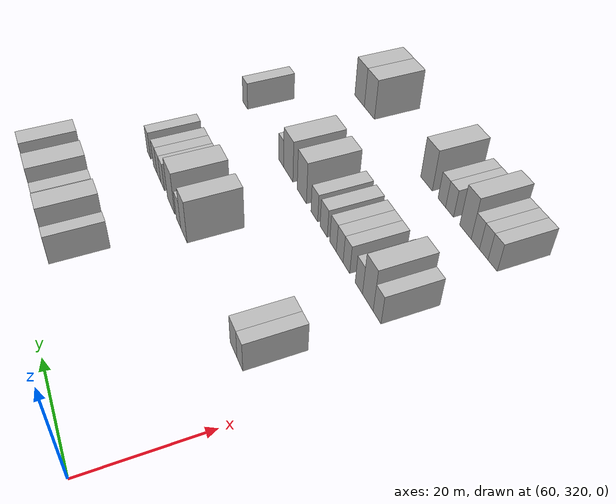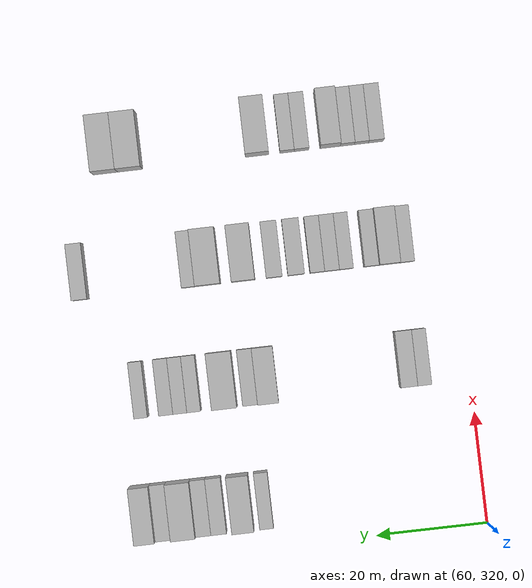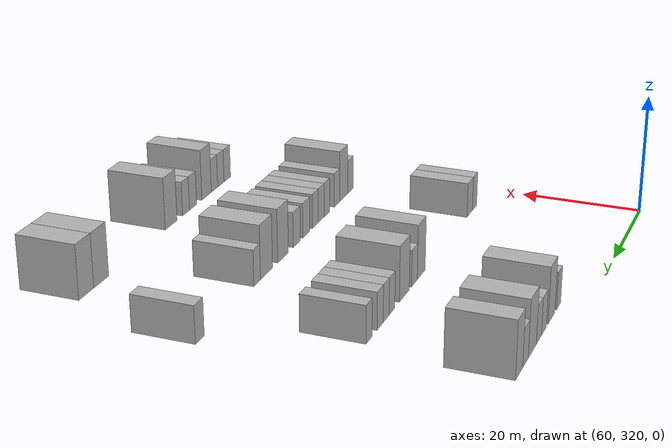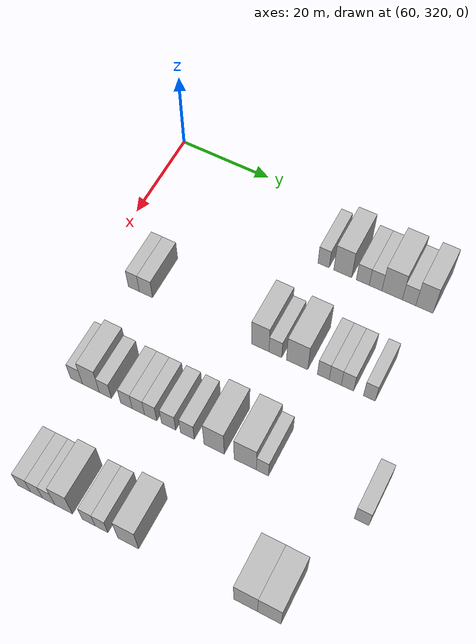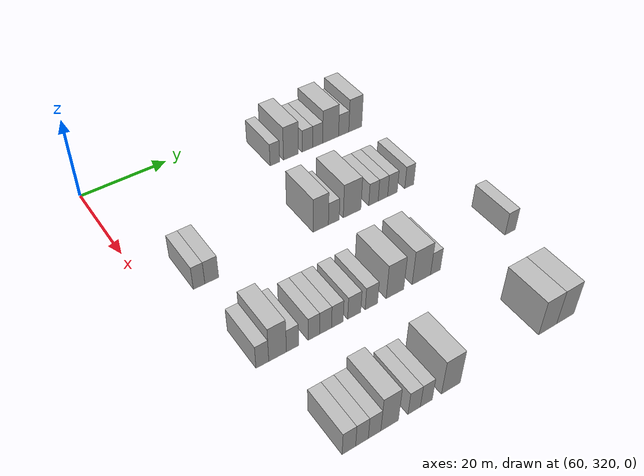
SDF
<sdf version="1.6">
 <world name="default">
  <model name="building_562">
   <static>1</static>
   <pose>69.0000 359.3264 0 0.000000 0.000000 0.000000</pose>
   <link name="link">
    <pose>0 0 3.00 0 0 0</pose>
    <collision name="collision"><geometry><box><size>10.0000 2.4606 6.0000</size></box></geometry></collision>
    <visual name="visual">
     <cast_shadows>0</cast_shadows>
     <geometry><box><size>10.0000 2.4606 6.0000</size></box></geometry>
     <material>
      <script>
       <uri>model://HANNAS_wall/materials/scripts</uri>
       <uri>model://HANNAS_wall/materials/textures</uri>
       <name>vrc/HANNAS_wall</name>
      </script>
     </material>
    </visual>
   </link>
  </model>
  <model name="building_563">
   <static>1</static>
   <pose>69.0000 363.5041 0 0.000000 0.000000 0.000000</pose>
   <link name="link">
    <pose>0 0 4.50 0 0 0</pose>
    <collision name="collision"><geometry><box><size>10.0000 3.8948 9.0000</size></box></geometry></collision>
    <visual name="visual">
     <cast_shadows>0</cast_shadows>
     <geometry><box><size>10.0000 3.8948 9.0000</size></box></geometry>
     <material>
      <script>
       <uri>model://HANNAS_wall/materials/scripts</uri>
       <uri>model://HANNAS_wall/materials/textures</uri>
       <name>vrc/HANNAS_wall</name>
      </script>
     </material>
    </visual>
   </link>
  </model>
  <model name="building_564">
   <static>1</static>
   <pose>69.0000 367.8388 0 0.000000 0.000000 0.000000</pose>
   <link name="link">
    <pose>0 0 3.00 0 0 0</pose>
    <collision name="collision"><geometry><box><size>10.0000 2.7747 6.0000</size></box></geometry></collision>
    <visual name="visual">
     <cast_shadows>0</cast_shadows>
     <geometry><box><size>10.0000 2.7747 6.0000</size></box></geometry>
     <material>
      <script>
       <uri>model://HANNAS_wall/materials/scripts</uri>
       <uri>model://HANNAS_wall/materials/textures</uri>
       <name>vrc/HANNAS_wall</name>
      </script>
     </material>
    </visual>
   </link>
  </model>
  <model name="building_565">
   <static>1</static>
   <pose>69.0000 370.5833 0 0.000000 0.000000 0.000000</pose>
   <link name="link">
    <pose>0 0 3.00 0 0 0</pose>
    <collision name="collision"><geometry><box><size>10.0000 2.7143 6.0000</size></box></geometry></collision>
    <visual name="visual">
     <cast_shadows>0</cast_shadows>
     <geometry><box><size>10.0000 2.7143 6.0000</size></box></geometry>
     <material>
      <script>
       <uri>model://HANNAS_wall/materials/scripts</uri>
       <uri>model://HANNAS_wall/materials/textures</uri>
       <name>vrc/HANNAS_wall</name>
      </script>
     </material>
    </visual>
   </link>
  </model>
  <model name="building_566">
   <static>1</static>
   <pose>69.0000 374.1105 0 0.000000 0.000000 0.000000</pose>
   <link name="link">
    <pose>0 0 4.50 0 0 0</pose>
    <collision name="collision"><geometry><box><size>10.0000 4.3400 9.0000</size></box></geometry></collision>
    <visual name="visual">
     <cast_shadows>0</cast_shadows>
     <geometry><box><size>10.0000 4.3400 9.0000</size></box></geometry>
     <material>
      <script>
       <uri>model://HANNAS_wall/materials/scripts</uri>
       <uri>model://HANNAS_wall/materials/textures</uri>
       <name>vrc/HANNAS_wall</name>
      </script>
     </material>
    </visual>
   </link>
  </model>
  <model name="building_567">
   <static>1</static>
   <pose>69.0000 377.6994 0 0.000000 0.000000 0.000000</pose>
   <link name="link">
    <pose>0 0 3.00 0 0 0</pose>
    <collision name="collision"><geometry><box><size>10.0000 2.8377 6.0000</size></box></geometry></collision>
    <visual name="visual">
     <cast_shadows>0</cast_shadows>
     <geometry><box><size>10.0000 2.8377 6.0000</size></box></geometry>
     <material>
      <script>
       <uri>model://HANNAS_wall/materials/scripts</uri>
       <uri>model://HANNAS_wall/materials/textures</uri>
       <name>vrc/HANNAS_wall</name>
      </script>
     </material>
    </visual>
   </link>
  </model>
  <model name="building_568">
   <static>1</static>
   <pose>69.0000 380.9328 0 0.000000 0.000000 0.000000</pose>
   <link name="link">
    <pose>0 0 4.50 0 0 0</pose>
    <collision name="collision"><geometry><box><size>10.0000 3.6291 9.0000</size></box></geometry></collision>
    <visual name="visual">
     <cast_shadows>0</cast_shadows>
     <geometry><box><size>10.0000 3.6291 9.0000</size></box></geometry>
     <material>
      <script>
       <uri>model://HANNAS_wall/materials/scripts</uri>
       <uri>model://HANNAS_wall/materials/textures</uri>
       <name>vrc/HANNAS_wall</name>
      </script>
     </material>
    </visual>
   </link>
  </model>
  <model name="building_744">
   <static>1</static>
   <pose>91.0000 328.6640 0 0.000000 0.000000 0.000000</pose>
   <link name="link">
    <pose>0 0 3.00 0 0 0</pose>
    <collision name="collision"><geometry><box><size>10.0000 2.4816 6.0000</size></box></geometry></collision>
    <visual name="visual">
     <cast_shadows>0</cast_shadows>
     <geometry><box><size>10.0000 2.4816 6.0000</size></box></geometry>
     <material>
      <script>
       <uri>model://HANNAS_wall/materials/scripts</uri>
       <uri>model://HANNAS_wall/materials/textures</uri>
       <name>vrc/HANNAS_wall</name>
      </script>
     </material>
    </visual>
   </link>
  </model>
  <model name="building_745">
   <static>1</static>
   <pose>91.0000 331.4032 0 0.000000 0.000000 0.000000</pose>
   <link name="link">
    <pose>0 0 3.00 0 0 0</pose>
    <collision name="collision"><geometry><box><size>10.0000 2.9967 6.0000</size></box></geometry></collision>
    <visual name="visual">
     <cast_shadows>0</cast_shadows>
     <geometry><box><size>10.0000 2.9967 6.0000</size></box></geometry>
     <material>
      <script>
       <uri>model://HANNAS_wall/materials/scripts</uri>
       <uri>model://HANNAS_wall/materials/textures</uri>
       <name>vrc/HANNAS_wall</name>
      </script>
     </material>
    </visual>
   </link>
  </model>
  <model name="building_746">
   <static>1</static>
   <pose>91.0000 356.4829 0 0.000000 0.000000 0.000000</pose>
   <link name="link">
    <pose>0 0 4.50 0 0 0</pose>
    <collision name="collision"><geometry><box><size>10.0000 3.7209 9.0000</size></box></geometry></collision>
    <visual name="visual">
     <cast_shadows>0</cast_shadows>
     <geometry><box><size>10.0000 3.7209 9.0000</size></box></geometry>
     <material>
      <script>
       <uri>model://HANNAS_wall/materials/scripts</uri>
       <uri>model://HANNAS_wall/materials/textures</uri>
       <name>vrc/HANNAS_wall</name>
      </script>
     </material>
    </visual>
   </link>
  </model>
  <model name="building_747">
   <static>1</static>
   <pose>91.0000 359.6841 0 0.000000 0.000000 0.000000</pose>
   <link name="link">
    <pose>0 0 3.00 0 0 0</pose>
    <collision name="collision"><geometry><box><size>10.0000 2.6814 6.0000</size></box></geometry></collision>
    <visual name="visual">
     <cast_shadows>0</cast_shadows>
     <geometry><box><size>10.0000 2.6814 6.0000</size></box></geometry>
     <material>
      <script>
       <uri>model://HANNAS_wall/materials/scripts</uri>
       <uri>model://HANNAS_wall/materials/textures</uri>
       <name>vrc/HANNAS_wall</name>
      </script>
     </material>
    </visual>
   </link>
  </model>
  <model name="building_748">
   <static>1</static>
   <pose>91.0000 364.2562 0 0.000000 0.000000 0.000000</pose>
   <link name="link">
    <pose>0 0 4.50 0 0 0</pose>
    <collision name="collision"><geometry><box><size>10.0000 4.4629 9.0000</size></box></geometry></collision>
    <visual name="visual">
     <cast_shadows>0</cast_shadows>
     <geometry><box><size>10.0000 4.4629 9.0000</size></box></geometry>
     <material>
      <script>
       <uri>model://HANNAS_wall/materials/scripts</uri>
       <uri>model://HANNAS_wall/materials/textures</uri>
       <name>vrc/HANNAS_wall</name>
      </script>
     </material>
    </visual>
   </link>
  </model>
  <model name="building_749">
   <static>1</static>
   <pose>91.0000 369.7116 0 0.000000 0.000000 0.000000</pose>
   <link name="link">
    <pose>0 0 3.00 0 0 0</pose>
    <collision name="collision"><geometry><box><size>10.0000 2.4478 6.0000</size></box></geometry></collision>
    <visual name="visual">
     <cast_shadows>0</cast_shadows>
     <geometry><box><size>10.0000 2.4478 6.0000</size></box></geometry>
     <material>
      <script>
       <uri>model://HANNAS_wall/materials/scripts</uri>
       <uri>model://HANNAS_wall/materials/textures</uri>
       <name>vrc/HANNAS_wall</name>
      </script>
     </material>
    </visual>
   </link>
  </model>
  <model name="building_750">
   <static>1</static>
   <pose>91.0000 372.1751 0 0.000000 0.000000 0.000000</pose>
   <link name="link">
    <pose>0 0 3.00 0 0 0</pose>
    <collision name="collision"><geometry><box><size>10.0000 2.4791 6.0000</size></box></geometry></collision>
    <visual name="visual">
     <cast_shadows>0</cast_shadows>
     <geometry><box><size>10.0000 2.4791 6.0000</size></box></geometry>
     <material>
      <script>
       <uri>model://HANNAS_wall/materials/scripts</uri>
       <uri>model://HANNAS_wall/materials/textures</uri>
       <name>vrc/HANNAS_wall</name>
      </script>
     </material>
    </visual>
   </link>
  </model>
  <model name="building_751">
   <static>1</static>
   <pose>91.0000 374.6810 0 0.000000 0.000000 0.000000</pose>
   <link name="link">
    <pose>0 0 3.00 0 0 0</pose>
    <collision name="collision"><geometry><box><size>10.0000 2.5328 6.0000</size></box></geometry></collision>
    <visual name="visual">
     <cast_shadows>0</cast_shadows>
     <geometry><box><size>10.0000 2.5328 6.0000</size></box></geometry>
     <material>
      <script>
       <uri>model://HANNAS_wall/materials/scripts</uri>
       <uri>model://HANNAS_wall/materials/textures</uri>
       <name>vrc/HANNAS_wall</name>
      </script>
     </material>
    </visual>
   </link>
  </model>
  <model name="building_752">
   <static>1</static>
   <pose>91.0000 379.1498 0 0.000000 0.000000 0.000000</pose>
   <link name="link">
    <pose>0 0 3.00 0 0 0</pose>
    <collision name="collision"><geometry><box><size>10.0000 2.4046 6.0000</size></box></geometry></collision>
    <visual name="visual">
     <cast_shadows>0</cast_shadows>
     <geometry><box><size>10.0000 2.4046 6.0000</size></box></geometry>
     <material>
      <script>
       <uri>model://HANNAS_wall/materials/scripts</uri>
       <uri>model://HANNAS_wall/materials/textures</uri>
       <name>vrc/HANNAS_wall</name>
      </script>
     </material>
    </visual>
   </link>
  </model>
  <model name="building_924">
   <static>1</static>
   <pose>113.0000 329.2206 0 0.000000 0.000000 0.000000</pose>
   <link name="link">
    <pose>0 0 3.00 0 0 0</pose>
    <collision name="collision"><geometry><box><size>10.0000 2.6208 6.0000</size></box></geometry></collision>
    <visual name="visual">
     <cast_shadows>0</cast_shadows>
     <geometry><box><size>10.0000 2.6208 6.0000</size></box></geometry>
     <material>
      <script>
       <uri>model://HANNAS_wall/materials/scripts</uri>
       <uri>model://HANNAS_wall/materials/textures</uri>
       <name>vrc/HANNAS_wall</name>
      </script>
     </material>
    </visual>
   </link>
  </model>
  <model name="building_925">
   <static>1</static>
   <pose>113.0000 332.3669 0 0.000000 0.000000 0.000000</pose>
   <link name="link">
    <pose>0 0 4.50 0 0 0</pose>
    <collision name="collision"><geometry><box><size>10.0000 3.6717 9.0000</size></box></geometry></collision>
    <visual name="visual">
     <cast_shadows>0</cast_shadows>
     <geometry><box><size>10.0000 3.6717 9.0000</size></box></geometry>
     <material>
      <script>
       <uri>model://HANNAS_wall/materials/scripts</uri>
       <uri>model://HANNAS_wall/materials/textures</uri>
       <name>vrc/HANNAS_wall</name>
      </script>
     </material>
    </visual>
   </link>
  </model>
  <model name="building_926">
   <static>1</static>
   <pose>113.0000 335.4960 0 0.000000 0.000000 0.000000</pose>
   <link name="link">
    <pose>0 0 3.00 0 0 0</pose>
    <collision name="collision"><geometry><box><size>10.0000 2.5864 6.0000</size></box></geometry></collision>
    <visual name="visual">
     <cast_shadows>0</cast_shadows>
     <geometry><box><size>10.0000 2.5864 6.0000</size></box></geometry>
     <material>
      <script>
       <uri>model://HANNAS_wall/materials/scripts</uri>
       <uri>model://HANNAS_wall/materials/textures</uri>
       <name>vrc/HANNAS_wall</name>
      </script>
     </material>
    </visual>
   </link>
  </model>
  <model name="building_927">
   <static>1</static>
   <pose>113.0000 340.0272 0 0.000000 0.000000 0.000000</pose>
   <link name="link">
    <pose>0 0 3.00 0 0 0</pose>
    <collision name="collision"><geometry><box><size>10.0000 2.4760 6.0000</size></box></geometry></collision>
    <visual name="visual">
     <cast_shadows>0</cast_shadows>
     <geometry><box><size>10.0000 2.4760 6.0000</size></box></geometry>
     <material>
      <script>
       <uri>model://HANNAS_wall/materials/scripts</uri>
       <uri>model://HANNAS_wall/materials/textures</uri>
       <name>vrc/HANNAS_wall</name>
      </script>
     </material>
    </visual>
   </link>
  </model>
  <model name="building_928">
   <static>1</static>
   <pose>113.0000 342.5741 0 0.000000 0.000000 0.000000</pose>
   <link name="link">
    <pose>0 0 3.00 0 0 0</pose>
    <collision name="collision"><geometry><box><size>10.0000 2.6180 6.0000</size></box></geometry></collision>
    <visual name="visual">
     <cast_shadows>0</cast_shadows>
     <geometry><box><size>10.0000 2.6180 6.0000</size></box></geometry>
     <material>
      <script>
       <uri>model://HANNAS_wall/materials/scripts</uri>
       <uri>model://HANNAS_wall/materials/textures</uri>
       <name>vrc/HANNAS_wall</name>
      </script>
     </material>
    </visual>
   </link>
  </model>
  <model name="building_929">
   <static>1</static>
   <pose>113.0000 345.1762 0 0.000000 0.000000 0.000000</pose>
   <link name="link">
    <pose>0 0 3.00 0 0 0</pose>
    <collision name="collision"><geometry><box><size>10.0000 2.5862 6.0000</size></box></geometry></collision>
    <visual name="visual">
     <cast_shadows>0</cast_shadows>
     <geometry><box><size>10.0000 2.5862 6.0000</size></box></geometry>
     <material>
      <script>
       <uri>model://HANNAS_wall/materials/scripts</uri>
       <uri>model://HANNAS_wall/materials/textures</uri>
       <name>vrc/HANNAS_wall</name>
      </script>
     </material>
    </visual>
   </link>
  </model>
  <model name="building_930">
   <static>1</static>
   <pose>113.0000 348.9522 0 0.000000 0.000000 0.000000</pose>
   <link name="link">
    <pose>0 0 3.00 0 0 0</pose>
    <collision name="collision"><geometry><box><size>10.0000 2.9657 6.0000</size></box></geometry></collision>
    <visual name="visual">
     <cast_shadows>0</cast_shadows>
     <geometry><box><size>10.0000 2.9657 6.0000</size></box></geometry>
     <material>
      <script>
       <uri>model://HANNAS_wall/materials/scripts</uri>
       <uri>model://HANNAS_wall/materials/textures</uri>
       <name>vrc/HANNAS_wall</name>
      </script>
     </material>
    </visual>
   </link>
  </model>
  <model name="building_931">
   <static>1</static>
   <pose>113.0000 352.8654 0 0.000000 0.000000 0.000000</pose>
   <link name="link">
    <pose>0 0 3.00 0 0 0</pose>
    <collision name="collision"><geometry><box><size>10.0000 2.8607 6.0000</size></box></geometry></collision>
    <visual name="visual">
     <cast_shadows>0</cast_shadows>
     <geometry><box><size>10.0000 2.8607 6.0000</size></box></geometry>
     <material>
      <script>
       <uri>model://HANNAS_wall/materials/scripts</uri>
       <uri>model://HANNAS_wall/materials/textures</uri>
       <name>vrc/HANNAS_wall</name>
      </script>
     </material>
    </visual>
   </link>
  </model>
  <model name="building_932">
   <static>1</static>
   <pose>113.0000 358.3746 0 0.000000 0.000000 0.000000</pose>
   <link name="link">
    <pose>0 0 4.50 0 0 0</pose>
    <collision name="collision"><geometry><box><size>10.0000 4.1577 9.0000</size></box></geometry></collision>
    <visual name="visual">
     <cast_shadows>0</cast_shadows>
     <geometry><box><size>10.0000 4.1577 9.0000</size></box></geometry>
     <material>
      <script>
       <uri>model://HANNAS_wall/materials/scripts</uri>
       <uri>model://HANNAS_wall/materials/textures</uri>
       <name>vrc/HANNAS_wall</name>
      </script>
     </material>
    </visual>
   </link>
  </model>
  <model name="building_933">
   <static>1</static>
   <pose>113.0000 364.6967 0 0.000000 0.000000 0.000000</pose>
   <link name="link">
    <pose>0 0 4.50 0 0 0</pose>
    <collision name="collision"><geometry><box><size>10.0000 4.4865 9.0000</size></box></geometry></collision>
    <visual name="visual">
     <cast_shadows>0</cast_shadows>
     <geometry><box><size>10.0000 4.4865 9.0000</size></box></geometry>
     <material>
      <script>
       <uri>model://HANNAS_wall/materials/scripts</uri>
       <uri>model://HANNAS_wall/materials/textures</uri>
       <name>vrc/HANNAS_wall</name>
      </script>
     </material>
    </visual>
   </link>
  </model>
  <model name="building_934">
   <static>1</static>
   <pose>113.0000 368.1578 0 0.000000 0.000000 0.000000</pose>
   <link name="link">
    <pose>0 0 3.00 0 0 0</pose>
    <collision name="collision"><geometry><box><size>10.0000 2.4357 6.0000</size></box></geometry></collision>
    <visual name="visual">
     <cast_shadows>0</cast_shadows>
     <geometry><box><size>10.0000 2.4357 6.0000</size></box></geometry>
     <material>
      <script>
       <uri>model://HANNAS_wall/materials/scripts</uri>
       <uri>model://HANNAS_wall/materials/textures</uri>
       <name>vrc/HANNAS_wall</name>
      </script>
     </material>
    </visual>
   </link>
  </model>
  <model name="building_935">
   <static>1</static>
   <pose>113.0000 387.5501 0 0.000000 0.000000 0.000000</pose>
   <link name="link">
    <pose>0 0 3.00 0 0 0</pose>
    <collision name="collision"><geometry><box><size>10.0000 2.7830 6.0000</size></box></geometry></collision>
    <visual name="visual">
     <cast_shadows>0</cast_shadows>
     <geometry><box><size>10.0000 2.7830 6.0000</size></box></geometry>
     <material>
      <script>
       <uri>model://HANNAS_wall/materials/scripts</uri>
       <uri>model://HANNAS_wall/materials/textures</uri>
       <name>vrc/HANNAS_wall</name>
      </script>
     </material>
    </visual>
   </link>
  </model>
  <model name="building_1105">
   <static>1</static>
   <pose>135.0000 332.0498 0 0.000000 0.000000 0.000000</pose>
   <link name="link">
    <pose>0 0 3.00 0 0 0</pose>
    <collision name="collision"><geometry><box><size>10.0000 2.6745 6.0000</size></box></geometry></collision>
    <visual name="visual">
     <cast_shadows>0</cast_shadows>
     <geometry><box><size>10.0000 2.6745 6.0000</size></box></geometry>
     <material>
      <script>
       <uri>model://HANNAS_wall/materials/scripts</uri>
       <uri>model://HANNAS_wall/materials/textures</uri>
       <name>vrc/HANNAS_wall</name>
      </script>
     </material>
    </visual>
   </link>
  </model>
  <model name="building_1106">
   <static>1</static>
   <pose>135.0000 334.6555 0 0.000000 0.000000 0.000000</pose>
   <link name="link">
    <pose>0 0 3.00 0 0 0</pose>
    <collision name="collision"><geometry><box><size>10.0000 2.5369 6.0000</size></box></geometry></collision>
    <visual name="visual">
     <cast_shadows>0</cast_shadows>
     <geometry><box><size>10.0000 2.5369 6.0000</size></box></geometry>
     <material>
      <script>
       <uri>model://HANNAS_wall/materials/scripts</uri>
       <uri>model://HANNAS_wall/materials/textures</uri>
       <name>vrc/HANNAS_wall</name>
      </script>
     </material>
    </visual>
   </link>
  </model>
  <model name="building_1107">
   <static>1</static>
   <pose>135.0000 337.1954 0 0.000000 0.000000 0.000000</pose>
   <link name="link">
    <pose>0 0 3.00 0 0 0</pose>
    <collision name="collision"><geometry><box><size>10.0000 2.5429 6.0000</size></box></geometry></collision>
    <visual name="visual">
     <cast_shadows>0</cast_shadows>
     <geometry><box><size>10.0000 2.5429 6.0000</size></box></geometry>
     <material>
      <script>
       <uri>model://HANNAS_wall/materials/scripts</uri>
       <uri>model://HANNAS_wall/materials/textures</uri>
       <name>vrc/HANNAS_wall</name>
      </script>
     </material>
    </visual>
   </link>
  </model>
  <model name="building_1108">
   <static>1</static>
   <pose>135.0000 340.2831 0 0.000000 0.000000 0.000000</pose>
   <link name="link">
    <pose>0 0 4.50 0 0 0</pose>
    <collision name="collision"><geometry><box><size>10.0000 3.6326 9.0000</size></box></geometry></collision>
    <visual name="visual">
     <cast_shadows>0</cast_shadows>
     <geometry><box><size>10.0000 3.6326 9.0000</size></box></geometry>
     <material>
      <script>
       <uri>model://HANNAS_wall/materials/scripts</uri>
       <uri>model://HANNAS_wall/materials/textures</uri>
       <name>vrc/HANNAS_wall</name>
      </script>
     </material>
    </visual>
   </link>
  </model>
  <model name="building_1109">
   <static>1</static>
   <pose>135.0000 345.4223 0 0.000000 0.000000 0.000000</pose>
   <link name="link">
    <pose>0 0 3.00 0 0 0</pose>
    <collision name="collision"><geometry><box><size>10.0000 2.6459 6.0000</size></box></geometry></collision>
    <visual name="visual">
     <cast_shadows>0</cast_shadows>
     <geometry><box><size>10.0000 2.6459 6.0000</size></box></geometry>
     <material>
      <script>
       <uri>model://HANNAS_wall/materials/scripts</uri>
       <uri>model://HANNAS_wall/materials/textures</uri>
       <name>vrc/HANNAS_wall</name>
      </script>
     </material>
    </visual>
   </link>
  </model>
  <model name="building_1110">
   <static>1</static>
   <pose>135.0000 348.0296 0 0.000000 0.000000 0.000000</pose>
   <link name="link">
    <pose>0 0 3.00 0 0 0</pose>
    <collision name="collision"><geometry><box><size>10.0000 2.5687 6.0000</size></box></geometry></collision>
    <visual name="visual">
     <cast_shadows>0</cast_shadows>
     <geometry><box><size>10.0000 2.5687 6.0000</size></box></geometry>
     <material>
      <script>
       <uri>model://HANNAS_wall/materials/scripts</uri>
       <uri>model://HANNAS_wall/materials/textures</uri>
       <name>vrc/HANNAS_wall</name>
      </script>
     </material>
    </visual>
   </link>
  </model>
  <model name="building_1111">
   <static>1</static>
   <pose>135.0000 353.3972 0 0.000000 0.000000 0.000000</pose>
   <link name="link">
    <pose>0 0 4.50 0 0 0</pose>
    <collision name="collision"><geometry><box><size>10.0000 4.1664 9.0000</size></box></geometry></collision>
    <visual name="visual">
     <cast_shadows>0</cast_shadows>
     <geometry><box><size>10.0000 4.1664 9.0000</size></box></geometry>
     <material>
      <script>
       <uri>model://HANNAS_wall/materials/scripts</uri>
       <uri>model://HANNAS_wall/materials/textures</uri>
       <name>vrc/HANNAS_wall</name>
      </script>
     </material>
    </visual>
   </link>
  </model>
  <model name="building_1112">
   <static>1</static>
   <pose>135.0000 376.2301 0 0.000000 0.000000 0.000000</pose>
   <link name="link">
    <pose>0 0 4.50 0 0 0</pose>
    <collision name="collision"><geometry><box><size>10.0000 4.4998 9.0000</size></box></geometry></collision>
    <visual name="visual">
     <cast_shadows>0</cast_shadows>
     <geometry><box><size>10.0000 4.4998 9.0000</size></box></geometry>
     <material>
      <script>
       <uri>model://HANNAS_wall/materials/scripts</uri>
       <uri>model://HANNAS_wall/materials/textures</uri>
       <name>vrc/HANNAS_wall</name>
      </script>
     </material>
    </visual>
   </link>
  </model>
  <model name="building_1113">
   <static>1</static>
   <pose>135.0000 380.6687 0 0.000000 0.000000 0.000000</pose>
   <link name="link">
    <pose>0 0 4.50 0 0 0</pose>
    <collision name="collision"><geometry><box><size>10.0000 4.3775 9.0000</size></box></geometry></collision>
    <visual name="visual">
     <cast_shadows>0</cast_shadows>
     <geometry><box><size>10.0000 4.3775 9.0000</size></box></geometry>
     <material>
      <script>
       <uri>model://HANNAS_wall/materials/scripts</uri>
       <uri>model://HANNAS_wall/materials/textures</uri>
       <name>vrc/HANNAS_wall</name>
      </script>
     </material>
    </visual>
   </link>
  </model>
 </world>
</sdf>
